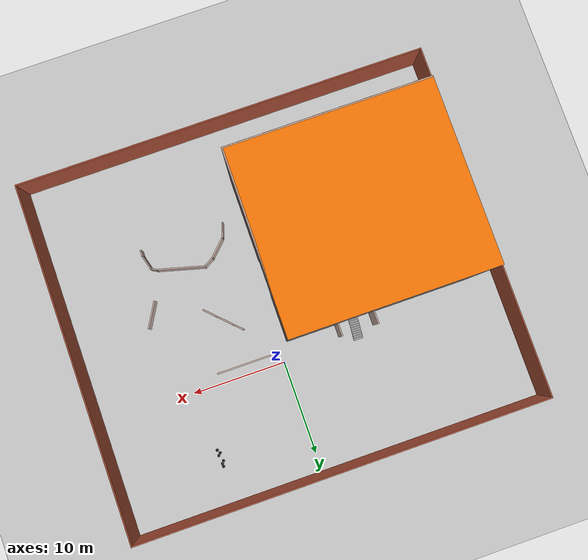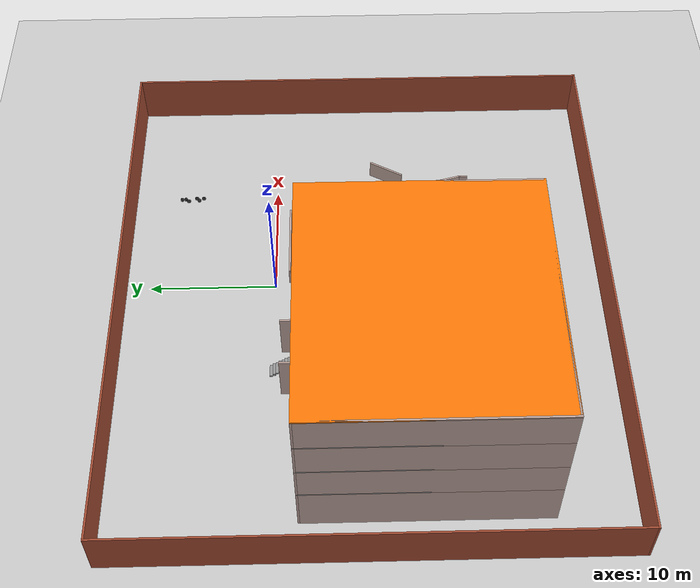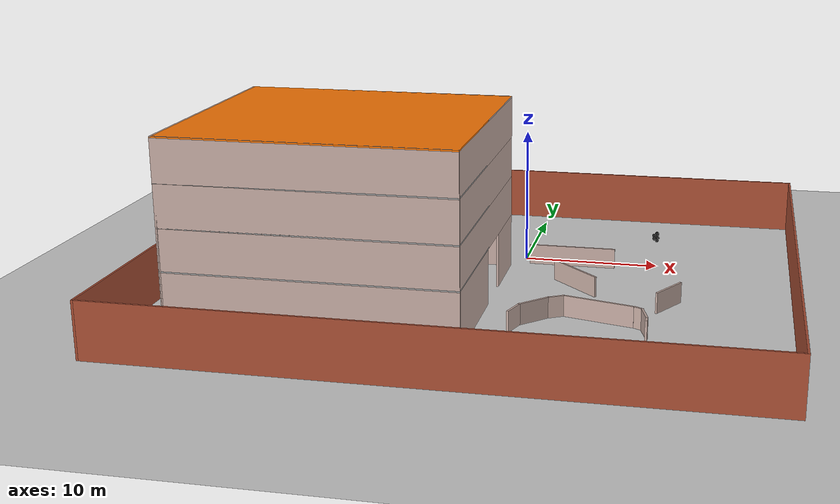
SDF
<sdf version="1.7">
 <world name="default">
  <model name="ground_plane">
   <static>1</static>
   <link name="link">
    <collision name="collision">
     <geometry><plane><normal>0 0 1</normal><size>100 100</size></plane></geometry>
     <surface><friction><ode><mu>100</mu><mu2>50</mu2></ode></friction></surface>
    </collision>
    <visual name="visual">
     <cast_shadows>0</cast_shadows>
     <geometry><plane><normal>0 0 1</normal><size>100 100</size></plane></geometry>
     <material>
      <script><uri>file://media/materials/scripts/gazebo.material</uri><name>Gazebo/Grey</name></script>
     </material>
    </visual>
   </link>
  </model>
  <model name="building2">
   <pose>-11 -10.325 0 0 -0 0</pose>
   <link name="Floor_0">
    <collision name="Floor_0_Collision">
     <geometry><box><size>20.15 18.15 0.1</size></box></geometry>
     <pose>0 0 0.05 0 -0 0</pose>
    </collision>
    <visual name="Floor_0_Visual">
     <pose>0 0 0.05 0 -0 0</pose>
     <geometry><box><size>20.15 18.15 0.1</size></box></geometry>
     <material>
      <script><uri>file://media/materials/scripts/gazebo.material</uri><name>Gazebo/Grey</name></script>
      <ambient>1 1 1 1</ambient>
     </material>
     <meta><layer>1</layer></meta>
    </visual>
    <pose>-0 -0.675 4 0 -0 0</pose>
   </link>
   <link name="Floor_2">
    <collision name="Floor_2_Collision">
     <geometry><box><size>20.15 18.15 0.1</size></box></geometry>
     <pose>0 0 0.05 0 -0 0</pose>
    </collision>
    <visual name="Floor_2_Visual">
     <pose>0 0 0.05 0 -0 0</pose>
     <geometry><box><size>20.15 18.15 0.1</size></box></geometry>
     <material>
      <script><uri>file://media/materials/scripts/gazebo.material</uri><name>Gazebo/Grey</name></script>
      <ambient>1 1 1 1</ambient>
     </material>
     <meta><layer>2</layer></meta>
    </visual>
    <pose>-0 -0.675 7 0 -0 0</pose>
   </link>
   <link name="Floor_3">
    <collision name="Floor_3_Collision">
     <geometry><box><size>20.15 18.15 0.1</size></box></geometry>
     <pose>0 0 0.05 0 -0 0</pose>
    </collision>
    <visual name="Floor_3_Visual">
     <pose>0 0 0.05 0 -0 0</pose>
     <geometry><box><size>20.15 18.15 0.1</size></box></geometry>
     <material>
      <script><uri>file://media/materials/scripts/gazebo.material</uri><name>Gazebo/Grey</name></script>
      <ambient>1 1 1 1</ambient>
     </material>
     <meta><layer>3</layer></meta>
    </visual>
    <pose>-0 -0.675 10 0 -0 0</pose>
   </link>
   <link name="Floor_8">
    <collision name="Floor_8_Collision">
     <geometry><box><size>20.15 18.15 0.1</size></box></geometry>
     <pose>0 0 0.05 0 -0 0</pose>
    </collision>
    <visual name="Floor_8_Visual">
     <pose>0 0 0.05 0 -0 0</pose>
     <geometry><box><size>20.15 18.15 0.1</size></box></geometry>
     <material>
      <script><uri>file://media/materials/scripts/gazebo.material</uri><name>Gazebo/Grey</name></script>
      <ambient>0.996078 0.47451 0.0196078 1</ambient>
     </material>
     <meta><layer>4</layer></meta>
    </visual>
    <pose>-0 -0.675 13 0 -0 0</pose>
   </link>
   <link name="Wall_11">
    <collision name="Wall_11_Collision">
     <geometry><box><size>1.5 0.15 4</size></box></geometry>
     <pose>0 0 2 0 -0 0</pose>
    </collision>
    <visual name="Wall_11_Visual">
     <pose>0 0 2 0 -0 0</pose>
     <geometry><box><size>1.5 0.15 4</size></box></geometry>
     <material>
      <script><uri>file://media/materials/scripts/gazebo.material</uri><name>Gazebo/Grey</name></script>
      <ambient>0.760784 0.662745 0.627451 1</ambient>
     </material>
     <meta><layer>0</layer></meta>
    </visual>
    <pose>0.8 9 0 0 -0 -1.5708</pose>
   </link>
   <link name="Wall_12">
    <collision name="Wall_12_Collision">
     <geometry><box><size>10.95 0.15 4</size></box></geometry>
     <pose>0 0 2 0 -0 0</pose>
    </collision>
    <visual name="Wall_12_Visual">
     <pose>0 0 2 0 -0 0</pose>
     <geometry><box><size>10.95 0.15 4</size></box></geometry>
     <material>
      <script><uri>file://media/materials/scripts/gazebo.material</uri><name>Gazebo/Grey</name></script>
      <ambient>0.760784 0.662745 0.627451 1</ambient>
     </material>
     <meta><layer>0</layer></meta>
    </visual>
    <pose>-4.6 8.325 0 0 -0 3.14159</pose>
   </link>
   <link name="Wall_14">
    <collision name="Wall_14_Collision">
     <geometry><box><size>18.15 0.15 4</size></box></geometry>
     <pose>0 0 2 0 -0 0</pose>
    </collision>
    <visual name="Wall_14_Visual">
     <pose>0 0 2 0 -0 0</pose>
     <geometry><box><size>18.15 0.15 4</size></box></geometry>
     <material>
      <script><uri>file://media/materials/scripts/gazebo.material</uri><name>Gazebo/Grey</name></script>
      <ambient>0.760784 0.662745 0.627451 1</ambient>
     </material>
     <meta><layer>0</layer></meta>
    </visual>
    <pose>-10 -0.675 0 0 -0 -1.5708</pose>
   </link>
   <link name="Wall_16">
    <collision name="Wall_16_Collision">
     <geometry><box><size>20.15 0.15 4</size></box></geometry>
     <pose>0 0 2 0 -0 0</pose>
    </collision>
    <visual name="Wall_16_Visual">
     <pose>0 0 2 0 -0 0</pose>
     <geometry><box><size>20.15 0.15 4</size></box></geometry>
     <material>
      <script><uri>file://media/materials/scripts/gazebo.material</uri><name>Gazebo/Grey</name></script>
      <ambient>0.760784 0.662745 0.627451 1</ambient>
     </material>
     <meta><layer>0</layer></meta>
    </visual>
    <pose>-0 -9.675 0 0 -0 0</pose>
   </link>
   <link name="Wall_24">
    <collision name="Wall_24_Collision">
     <geometry><box><size>18.15 0.15 3</size></box></geometry>
     <pose>0 0 1.5 0 -0 0</pose>
    </collision>
    <visual name="Wall_24_Visual">
     <pose>0 0 1.5 0 -0 0</pose>
     <geometry><box><size>18.15 0.15 3</size></box></geometry>
     <material>
      <script><uri>file://media/materials/scripts/gazebo.material</uri><name>Gazebo/Grey</name></script>
      <ambient>0.760784 0.662745 0.627451 1</ambient>
     </material>
     <meta><layer>1</layer></meta>
    </visual>
    <pose>-10 -0.675 4 0 -0 -1.5708</pose>
   </link>
   <link name="Wall_25">
    <collision name="Wall_25_Collision">
     <geometry><box><size>20.15 0.15 3</size></box></geometry>
     <pose>0 0 1.5 0 -0 0</pose>
    </collision>
    <visual name="Wall_25_Visual">
     <pose>0 0 1.5 0 -0 0</pose>
     <geometry><box><size>20.15 0.15 3</size></box></geometry>
     <material>
      <script><uri>file://media/materials/scripts/gazebo.material</uri><name>Gazebo/Grey</name></script>
      <ambient>0.760784 0.662745 0.627451 1</ambient>
     </material>
     <meta><layer>1</layer></meta>
    </visual>
    <pose>-0 -9.675 4 0 -0 0</pose>
   </link>
   <link name="Wall_31">
    <collision name="Wall_31_Collision">
     <geometry><box><size>20.15 0.15 3</size></box></geometry>
     <pose>0 0 1.5 0 -0 0</pose>
    </collision>
    <visual name="Wall_31_Visual">
     <pose>0 0 1.5 0 -0 0</pose>
     <geometry><box><size>20.15 0.15 3</size></box></geometry>
     <material>
      <script><uri>file://media/materials/scripts/gazebo.material</uri><name>Gazebo/Grey</name></script>
      <ambient>0.760784 0.662745 0.627451 1</ambient>
     </material>
     <meta><layer>1</layer></meta>
    </visual>
    <pose>-0 8.325 4 0 -0 0</pose>
   </link>
   <link name="Wall_33">
    <collision name="Wall_33_Collision">
     <geometry><box><size>18 0.15 3</size></box></geometry>
     <pose>0 0 1.5 0 -0 0</pose>
    </collision>
    <visual name="Wall_33_Visual">
     <pose>0 0 1.5 0 -0 0</pose>
     <geometry><box><size>18 0.15 3</size></box></geometry>
     <material>
      <script><uri>file://media/materials/scripts/gazebo.material</uri><name>Gazebo/Grey</name></script>
      <ambient>0.760784 0.662745 0.627451 1</ambient>
     </material>
     <meta><layer>1</layer></meta>
    </visual>
    <pose>10 -0.6 4 0 -0 -1.5708</pose>
   </link>
   <link name="Wall_4">
    <collision name="Wall_4_Collision">
     <geometry><box><size>5.15 0.15 4</size></box></geometry>
     <pose>0 0 2 0 -0 0</pose>
    </collision>
    <visual name="Wall_4_Visual">
     <pose>0 0 2 0 -0 0</pose>
     <geometry><box><size>5.15 0.15 4</size></box></geometry>
     <material>
      <script><uri>file://media/materials/scripts/gazebo.material</uri><name>Gazebo/Grey</name></script>
      <ambient>0.760784 0.662745 0.627451 1</ambient>
     </material>
     <meta><layer>0</layer></meta>
    </visual>
    <pose>10 5.825 0 0 -0 -1.5708</pose>
   </link>
   <link name="Wall_42">
    <collision name="Wall_42_Collision">
     <geometry><box><size>18.15 0.15 3</size></box></geometry>
     <pose>0 0 1.5 0 -0 0</pose>
    </collision>
    <visual name="Wall_42_Visual">
     <pose>0 0 1.5 0 -0 0</pose>
     <geometry><box><size>18.15 0.15 3</size></box></geometry>
     <material>
      <script><uri>file://media/materials/scripts/gazebo.material</uri><name>Gazebo/Grey</name></script>
      <ambient>0.760784 0.662745 0.627451 1</ambient>
     </material>
     <meta><layer>2</layer></meta>
    </visual>
    <pose>-10 -0.675 7 0 -0 -1.5708</pose>
   </link>
   <link name="Wall_43">
    <collision name="Wall_43_Collision">
     <geometry><box><size>20.15 0.15 3</size></box></geometry>
     <pose>0 0 1.5 0 -0 0</pose>
    </collision>
    <visual name="Wall_43_Visual">
     <pose>0 0 1.5 0 -0 0</pose>
     <geometry><box><size>20.15 0.15 3</size></box></geometry>
     <material>
      <script><uri>file://media/materials/scripts/gazebo.material</uri><name>Gazebo/Grey</name></script>
      <ambient>0.760784 0.662745 0.627451 1</ambient>
     </material>
     <meta><layer>2</layer></meta>
    </visual>
    <pose>-0 -9.675 7 0 -0 0</pose>
   </link>
   <link name="Wall_44">
    <collision name="Wall_44_Collision">
     <geometry><box><size>20.15 0.15 3</size></box></geometry>
     <pose>0 0 1.5 0 -0 0</pose>
    </collision>
    <visual name="Wall_44_Visual">
     <pose>0 0 1.5 0 -0 0</pose>
     <geometry><box><size>20.15 0.15 3</size></box></geometry>
     <material>
      <script><uri>file://media/materials/scripts/gazebo.material</uri><name>Gazebo/Grey</name></script>
      <ambient>0.760784 0.662745 0.627451 1</ambient>
     </material>
     <meta><layer>2</layer></meta>
    </visual>
    <pose>-0 8.325 7 0 -0 0</pose>
   </link>
   <link name="Wall_45">
    <collision name="Wall_45_Collision">
     <geometry><box><size>18 0.15 3</size></box></geometry>
     <pose>0 0 1.5 0 -0 0</pose>
    </collision>
    <visual name="Wall_45_Visual">
     <pose>0 0 1.5 0 -0 0</pose>
     <geometry><box><size>18 0.15 3</size></box></geometry>
     <material>
      <script><uri>file://media/materials/scripts/gazebo.material</uri><name>Gazebo/Grey</name></script>
      <ambient>0.760784 0.662745 0.627451 1</ambient>
     </material>
     <meta><layer>2</layer></meta>
    </visual>
    <pose>10 -0.6 7 0 -0 -1.5708</pose>
   </link>
   <link name="Wall_46">
    <collision name="Wall_46_Collision">
     <geometry><box><size>18.15 0.15 3</size></box></geometry>
     <pose>0 0 1.5 0 -0 0</pose>
    </collision>
    <visual name="Wall_46_Visual">
     <pose>0 0 1.5 0 -0 0</pose>
     <geometry><box><size>18.15 0.15 3</size></box></geometry>
     <material>
      <script><uri>file://media/materials/scripts/gazebo.material</uri><name>Gazebo/Grey</name></script>
      <ambient>0.760784 0.662745 0.627451 1</ambient>
     </material>
     <meta><layer>3</layer></meta>
    </visual>
    <pose>-10 -0.675 10 0 -0 -1.5708</pose>
   </link>
   <link name="Wall_47">
    <collision name="Wall_47_Collision">
     <geometry><box><size>20.15 0.15 3</size></box></geometry>
     <pose>0 0 1.5 0 -0 0</pose>
    </collision>
    <visual name="Wall_47_Visual">
     <pose>0 0 1.5 0 -0 0</pose>
     <geometry><box><size>20.15 0.15 3</size></box></geometry>
     <material>
      <script><uri>file://media/materials/scripts/gazebo.material</uri><name>Gazebo/Grey</name></script>
      <ambient>0.760784 0.662745 0.627451 1</ambient>
     </material>
     <meta><layer>3</layer></meta>
    </visual>
    <pose>-0 -9.675 10 0 -0 0</pose>
   </link>
   <link name="Wall_48">
    <collision name="Wall_48_Collision">
     <geometry><box><size>20.15 0.15 3</size></box></geometry>
     <pose>0 0 1.5 0 -0 0</pose>
    </collision>
    <visual name="Wall_48_Visual">
     <pose>0 0 1.5 0 -0 0</pose>
     <geometry><box><size>20.15 0.15 3</size></box></geometry>
     <material>
      <script><uri>file://media/materials/scripts/gazebo.material</uri><name>Gazebo/Grey</name></script>
      <ambient>0.760784 0.662745 0.627451 1</ambient>
     </material>
     <meta><layer>3</layer></meta>
    </visual>
    <pose>-0 8.325 10 0 -0 0</pose>
   </link>
   <link name="Wall_49">
    <collision name="Wall_49_Collision">
     <geometry><box><size>18 0.15 3</size></box></geometry>
     <pose>0 0 1.5 0 -0 0</pose>
    </collision>
    <visual name="Wall_49_Visual">
     <pose>0 0 1.5 0 -0 0</pose>
     <geometry><box><size>18 0.15 3</size></box></geometry>
     <material>
      <script><uri>file://media/materials/scripts/gazebo.material</uri><name>Gazebo/Grey</name></script>
      <ambient>0.760784 0.662745 0.627451 1</ambient>
     </material>
     <meta><layer>3</layer></meta>
    </visual>
    <pose>10 -0.6 10 0 -0 -1.5708</pose>
   </link>
   <link name="Wall_6">
    <collision name="Wall_6_Collision">
     <geometry><box><size>9.15 0.15 4</size></box></geometry>
     <pose>0 0 2 0 -0 0</pose>
    </collision>
    <visual name="Wall_6_Visual">
     <pose>0 0 2 0 -0 0</pose>
     <geometry><box><size>9.15 0.15 4</size></box></geometry>
     <material>
      <script><uri>file://media/materials/scripts/gazebo.material</uri><name>Gazebo/Grey</name></script>
      <ambient>0.760784 0.662745 0.627451 1</ambient>
     </material>
     <meta><layer>0</layer></meta>
    </visual>
    <pose>10 -5.175 0 0 -0 -1.5708</pose>
   </link>
   <link name="Wall_76">
    <collision name="Wall_76_Collision">
     <geometry><box><size>18.15 0.15 0.1</size></box></geometry>
     <pose>0 0 0.05 0 -0 0</pose>
    </collision>
    <visual name="Wall_76_Visual">
     <pose>0 0 0.05 0 -0 0</pose>
     <geometry><box><size>18.15 0.15 0.1</size></box></geometry>
     <material>
      <script><uri>file://media/materials/scripts/gazebo.material</uri><name>Gazebo/Grey</name></script>
      <ambient>0.760784 0.662745 0.627451 1</ambient>
     </material>
     <meta><layer>4</layer></meta>
    </visual>
    <pose>-10 -0.675 13 0 -0 -1.5708</pose>
   </link>
   <link name="Wall_77">
    <collision name="Wall_77_Collision">
     <geometry><box><size>20.15 0.15 0.1</size></box></geometry>
     <pose>0 0 0.05 0 -0 0</pose>
    </collision>
    <visual name="Wall_77_Visual">
     <pose>0 0 0.05 0 -0 0</pose>
     <geometry><box><size>20.15 0.15 0.1</size></box></geometry>
     <material>
      <script><uri>file://media/materials/scripts/gazebo.material</uri><name>Gazebo/Grey</name></script>
      <ambient>0.760784 0.662745 0.627451 1</ambient>
     </material>
     <meta><layer>4</layer></meta>
    </visual>
    <pose>-0 -9.675 13 0 -0 0</pose>
   </link>
   <link name="Wall_78">
    <collision name="Wall_78_Collision">
     <geometry><box><size>20.15 0.15 0.1</size></box></geometry>
     <pose>0 0 0.05 0 -0 0</pose>
    </collision>
    <visual name="Wall_78_Visual">
     <pose>0 0 0.05 0 -0 0</pose>
     <geometry><box><size>20.15 0.15 0.1</size></box></geometry>
     <material>
      <script><uri>file://media/materials/scripts/gazebo.material</uri><name>Gazebo/Grey</name></script>
      <ambient>0.760784 0.662745 0.627451 1</ambient>
     </material>
     <meta><layer>4</layer></meta>
    </visual>
    <pose>-0 8.325 13 0 -0 0</pose>
   </link>
   <link name="Wall_79">
    <collision name="Wall_79_Collision">
     <geometry><box><size>18 0.15 0.1</size></box></geometry>
     <pose>0 0 0.05 0 -0 0</pose>
    </collision>
    <visual name="Wall_79_Visual">
     <pose>0 0 0.05 0 -0 0</pose>
     <geometry><box><size>18 0.15 0.1</size></box></geometry>
     <material>
      <script><uri>file://media/materials/scripts/gazebo.material</uri><name>Gazebo/Grey</name></script>
      <ambient>0.760784 0.662745 0.627451 1</ambient>
     </material>
     <meta><layer>4</layer></meta>
    </visual>
    <pose>10 -0.6 13 0 -0 -1.5708</pose>
   </link>
   <link name="Wall_8">
    <collision name="Wall_8_Collision">
     <geometry><box><size>5.5 0.15 4</size></box></geometry>
     <pose>0 0 2 0 -0 0</pose>
    </collision>
    <visual name="Wall_8_Visual">
     <pose>0 0 2 0 -0 0</pose>
     <geometry><box><size>5.5 0.15 4</size></box></geometry>
     <material>
      <script><uri>file://media/materials/scripts/gazebo.material</uri><name>Gazebo/Grey</name></script>
      <ambient>0.760784 0.662745 0.627451 1</ambient>
     </material>
     <meta><layer>0</layer></meta>
    </visual>
    <pose>7.325 8.325 0 0 -0 3.14159</pose>
   </link>
   <link name="Wall_9">
    <collision name="Wall_9_Collision">
     <geometry><box><size>1.5 0.15 4</size></box></geometry>
     <pose>0 0 2 0 -0 0</pose>
    </collision>
    <visual name="Wall_9_Visual">
     <pose>0 0 2 0 -0 0</pose>
     <geometry><box><size>1.5 0.15 4</size></box></geometry>
     <material>
      <script><uri>file://media/materials/scripts/gazebo.material</uri><name>Gazebo/Grey</name></script>
      <ambient>0.760784 0.662745 0.627451 1</ambient>
     </material>
     <meta><layer>0</layer></meta>
    </visual>
    <pose>4.65 9 0 0 -0 1.5708</pose>
   </link>
   <static>1</static>
  </model>
  <model name="wall11">
   <pose>-2 -7 0 0 -0 0</pose>
   <link name="Wall_0">
    <collision name="Wall_0_Collision">
     <geometry><box><size>44.15 0.15 4</size></box></geometry>
     <pose>0 0 2 0 -0 0</pose>
    </collision>
    <visual name="Wall_0_Visual">
     <pose>0 0 2 0 -0 0</pose>
     <geometry><box><size>44.15 0.15 4</size></box></geometry>
     <material>
      <script><uri>file://media/materials/scripts/gazebo.material</uri><name>Gazebo/Bricks</name></script>
      <ambient>1 1 1 1</ambient>
     </material>
     <meta><layer>0</layer></meta>
    </visual>
    <pose>0 19 0 0 -0 0</pose>
   </link>
   <link name="Wall_2">
    <collision name="Wall_2_Collision">
     <geometry><box><size>38.15 0.15 4</size></box></geometry>
     <pose>0 0 2 0 -0 0</pose>
    </collision>
    <visual name="Wall_2_Visual">
     <pose>0 0 2 0 -0 0</pose>
     <geometry><box><size>38.15 0.15 4</size></box></geometry>
     <material>
      <script><uri>file://media/materials/scripts/gazebo.material</uri><name>Gazebo/Bricks</name></script>
      <ambient>1 1 1 1</ambient>
     </material>
     <meta><layer>0</layer></meta>
    </visual>
    <pose>22 0 0 0 -0 -1.5708</pose>
   </link>
   <link name="Wall_4">
    <collision name="Wall_4_Collision">
     <geometry><box><size>44.15 0.15 4</size></box></geometry>
     <pose>0 0 2 0 -0 0</pose>
    </collision>
    <visual name="Wall_4_Visual">
     <pose>0 0 2 0 -0 0</pose>
     <geometry><box><size>44.15 0.15 4</size></box></geometry>
     <material>
      <script><uri>file://media/materials/scripts/gazebo.material</uri><name>Gazebo/Bricks</name></script>
      <ambient>1 1 1 1</ambient>
     </material>
     <meta><layer>0</layer></meta>
    </visual>
    <pose>0 -19 0 0 -0 3.14159</pose>
   </link>
   <link name="Wall_6">
    <collision name="Wall_6_Collision">
     <geometry><box><size>38.15 0.15 4</size></box></geometry>
     <pose>0 0 2 0 -0 0</pose>
    </collision>
    <visual name="Wall_6_Visual">
     <pose>0 0 2 0 -0 0</pose>
     <geometry><box><size>38.15 0.15 4</size></box></geometry>
     <material>
      <script><uri>file://media/materials/scripts/gazebo.material</uri><name>Gazebo/Bricks</name></script>
      <ambient>1 1 1 1</ambient>
     </material>
     <meta><layer>0</layer></meta>
    </visual>
    <pose>-22 0 0 0 -0 1.5708</pose>
   </link>
   <static>1</static>
  </model>
  <model name="wall12">
   <pose>6.34105 -8.55443 0 0 -0 0</pose>
   <link name="Wall_0">
    <collision name="Wall_0_Collision">
     <geometry><box><size>1.73114 0.15 1.5</size></box></geometry>
     <pose>0 0 0.75 0 -0 0</pose>
    </collision>
    <visual name="Wall_0_Visual">
     <pose>0 0 0.75 0 -0 0</pose>
     <geometry><box><size>1.73114 0.15 1.5</size></box></geometry>
     <material>
      <script><uri>file://media/materials/scripts/gazebo.material</uri><name>Gazebo/Grey</name></script>
      <ambient>0.760784 0.662745 0.627451 1</ambient>
     </material>
     <meta><layer>0</layer></meta>
    </visual>
    <pose>-4.71274 -6.64107 0 0 -0 1.24905</pose>
   </link>
   <link name="Wall_13">
    <collision name="Wall_13_Collision">
     <geometry><box><size>6.5 0.15 1.5</size></box></geometry>
     <pose>0 0 0.75 0 -0 0</pose>
    </collision>
    <visual name="Wall_13_Visual">
     <pose>0 0 0.75 0 -0 0</pose>
     <geometry><box><size>6.5 0.15 1.5</size></box></geometry>
     <material>
      <script><uri>file://media/materials/scripts/gazebo.material</uri><name>Gazebo/Grey</name></script>
      <ambient>0.760784 0.662745 0.627451 1</ambient>
     </material>
     <meta><layer>0</layer></meta>
    </visual>
    <pose>-2.67774 7.41093 0 0 -0 0</pose>
   </link>
   <link name="Wall_15">
    <collision name="Wall_15_Collision">
     <geometry><box><size>4.75 0.15 1.5</size></box></geometry>
     <pose>0 0 0.75 0 -0 0</pose>
    </collision>
    <visual name="Wall_15_Visual">
     <pose>0 0 0.75 0 -0 0</pose>
     <geometry><box><size>4.75 0.15 1.5</size></box></geometry>
     <material>
      <script><uri>file://media/materials/scripts/gazebo.material</uri><name>Gazebo/Grey</name></script>
      <ambient>0.760784 0.662745 0.627451 1</ambient>
     </material>
     <meta><layer>0</layer></meta>
    </visual>
    <pose>-1.78524 2.28593 0 0 -0 -0.785244</pose>
   </link>
   <link name="Wall_2">
    <collision name="Wall_2_Collision">
     <geometry><box><size>2.5 0.15 1.5</size></box></geometry>
     <pose>0 0 0.75 0 -0 0</pose>
    </collision>
    <visual name="Wall_2_Visual">
     <pose>0 0 0.75 0 -0 0</pose>
     <geometry><box><size>2.5 0.15 1.5</size></box></geometry>
     <material>
      <script><uri>file://media/materials/scripts/gazebo.material</uri><name>Gazebo/Grey</name></script>
      <ambient>0.760784 0.662745 0.627451 1</ambient>
     </material>
     <meta><layer>0</layer></meta>
    </visual>
    <pose>-3.63175 -5.06007 0 0 -0 0.785398</pose>
   </link>
   <link name="Wall_3">
    <collision name="Wall_3_Collision">
     <geometry><box><size>1.25 0.15 1.5</size></box></geometry>
     <pose>0 0 0.75 0 -0 0</pose>
    </collision>
    <visual name="Wall_3_Visual">
     <pose>0 0 0.75 0 -0 0</pose>
     <geometry><box><size>1.25 0.15 1.5</size></box></geometry>
     <material>
      <script><uri>file://media/materials/scripts/gazebo.material</uri><name>Gazebo/Grey</name></script>
      <ambient>0.760784 0.662745 0.627451 1</ambient>
     </material>
     <meta><layer>0</layer></meta>
    </visual>
    <pose>-2.32475 -3.95407 0 0 -0 0.523884</pose>
   </link>
   <link name="Wall_5">
    <collision name="Wall_5_Collision">
     <geometry><box><size>0.75 0.15 1.5</size></box></geometry>
     <pose>0 0 0.75 0 -0 0</pose>
    </collision>
    <visual name="Wall_5_Visual">
     <pose>0 0 0.75 0 -0 0</pose>
     <geometry><box><size>0.75 0.15 1.5</size></box></geometry>
     <material>
      <script><uri>file://media/materials/scripts/gazebo.material</uri><name>Gazebo/Grey</name></script>
      <ambient>0.760784 0.662745 0.627451 1</ambient>
     </material>
     <meta><layer>0</layer></meta>
    </visual>
    <pose>4.07425 -7.09807 0 0 -0 1.5708</pose>
   </link>
   <link name="Wall_6">
    <collision name="Wall_6_Collision">
     <geometry><box><size>1.75 0.15 1.5</size></box></geometry>
     <pose>0 0 0.75 0 -0 0</pose>
    </collision>
    <visual name="Wall_6_Visual">
     <pose>0 0 0.75 0 -0 0</pose>
     <geometry><box><size>1.75 0.15 1.5</size></box></geometry>
     <material>
      <script><uri>file://media/materials/scripts/gazebo.material</uri><name>Gazebo/Grey</name></script>
      <ambient>0.760784 0.662745 0.627451 1</ambient>
     </material>
     <meta><layer>0</layer></meta>
    </visual>
    <pose>3.86726 -6.02557 0 0 -0 1.83261</pose>
   </link>
   <link name="Wall_7">
    <collision name="Wall_7_Collision">
     <geometry><box><size>0.75 0.15 1.5</size></box></geometry>
     <pose>0 0 0.75 0 -0 0</pose>
    </collision>
    <visual name="Wall_7_Visual">
     <pose>0 0 0.75 0 -0 0</pose>
     <geometry><box><size>0.75 0.15 1.5</size></box></geometry>
     <material>
      <script><uri>file://media/materials/scripts/gazebo.material</uri><name>Gazebo/Grey</name></script>
      <ambient>0.760784 0.662745 0.627451 1</ambient>
     </material>
     <meta><layer>0</layer></meta>
    </visual>
    <pose>3.40026 -5.10307 0 0 -0 2.61831</pose>
   </link>
   <link name="Wall_9">
    <collision name="Wall_9_Collision">
     <geometry><box><size>3 0.15 1.5</size></box></geometry>
     <pose>0 0 0.75 0 -0 0</pose>
    </collision>
    <visual name="Wall_9_Visual">
     <pose>0 0 0.75 0 -0 0</pose>
     <geometry><box><size>3 0.15 1.5</size></box></geometry>
     <material>
      <script><uri>file://media/materials/scripts/gazebo.material</uri><name>Gazebo/Grey</name></script>
      <ambient>0.760784 0.662745 0.627451 1</ambient>
     </material>
     <meta><layer>0</layer></meta>
    </visual>
    <pose>5.11275 -0.631066 0 0 -0 1.04717</pose>
   </link>
   <static>1</static>
  </model>
  <model name="wall1">
   <pose>6.97273 -12.8415 0 0 0 -0.014727</pose>
   <link name="Wall_0">
    <collision name="Wall_0_Collision">
     <geometry><box><size>5.09773 0.15 1.5</size></box></geometry>
     <pose>0 0 0.75 0 -0 0</pose>
    </collision>
    <visual name="Wall_0_Visual">
     <pose>0 0 0.75 0 -0 0</pose>
     <geometry><box><size>5.09773 0.15 1.5</size></box></geometry>
     <material>
      <script><uri>file://media/materials/scripts/gazebo.material</uri><name>Gazebo/Grey</name></script>
      <ambient>0.760784 0.662745 0.627451 1</ambient>
     </material>
     <meta><layer>0</layer></meta>
    </visual>
    <pose>0 0 0 0 -0 -0.244979</pose>
   </link>
   <static>1</static>
  </model>
  <model name="haoduomiantiaa_38">
   <link name="link_0">
    <inertial>
     <mass>0.2</mass>
     <inertia>
      <ixx>0.166667</ixx>
      <ixy>0</ixy>
      <ixz>0</ixz>
      <iyy>0.166667</iyy>
      <iyz>0</iyz>
      <izz>0.166667</izz>
     </inertia>
    </inertial>
    <visual name="visual">
     <geometry>
      <mesh>
       <uri>/home/lihaoyang/catkin_ws/src/pudong_gazebo/world/stl/haoduomianti.stl</uri>
       <scale>1 1 1</scale>
      </mesh>
     </geometry>
     <material>
      <lighting>1</lighting>
      <script><uri>file://media/materials/scripts/gazebo.material</uri><name>Gazebo/Black</name></script>
      <shader type="pixel"><normal_map>__default__</normal_map></shader>
      <ambient>0.3 0.3 0.3 1</ambient>
      <diffuse>0.7 0.7 0.7 1</diffuse>
      <specular>0.01 0.01 0.01 1</specular>
      <emissive>0 0 0 1</emissive>
     </material>
    </visual>
    <collision name="collision">
     <geometry>
      <mesh>
       <uri>/home/lihaoyang/catkin_ws/src/pudong_gazebo/world/stl/haoduomianti.stl</uri>
       <scale>1 1 1</scale>
      </mesh>
     </geometry>
     <surface>
      <friction>
       <ode><mu>1</mu><mu2>1</mu2><fdir1>0 0 0</fdir1><slip1>0</slip1><slip2>0</slip2></ode>
       <torsional>
        <coefficient>1</coefficient>
        <patch_radius>0</patch_radius>
        <surface_radius>0</surface_radius>
        <use_patch_radius>1</use_patch_radius>
        <ode><slip>0</slip></ode>
       </torsional>
      </friction>
      <bounce><restitution_coefficient>0</restitution_coefficient><threshold>1e+06</threshold></bounce>
      <contact>
       <collide_without_contact>0</collide_without_contact>
       <collide_without_contact_bitmask>1</collide_without_contact_bitmask>
       <collide_bitmask>1</collide_bitmask>
       <ode>
        <soft_cfm>0</soft_cfm>
        <soft_erp>0.2</soft_erp>
        <kp>1e+13</kp>
        <kd>1</kd>
        <max_vel>0.01</max_vel>
        <min_depth>0</min_depth>
       </ode>
       <bullet>
        <split_impulse>1</split_impulse>
        <split_impulse_penetration_threshold>-0.01</split_impulse_penetration_threshold>
        <soft_cfm>0</soft_cfm>
        <soft_erp>0.2</soft_erp>
        <kp>1e+13</kp>
        <kd>1</kd>
       </bullet>
      </contact>
     </surface>
    </collision>
   </link>
   <static>0</static>
   <pose>9.53542 7.82195 -0.11548 0.785404 -0.615481 2.06556</pose>
  </model>
  <model name="haoduomiantiaa_60">
   <link name="link_0">
    <inertial>
     <mass>0.2</mass>
     <inertia>
      <ixx>0.166667</ixx>
      <ixy>0</ixy>
      <ixz>0</ixz>
      <iyy>0.166667</iyy>
      <iyz>0</iyz>
      <izz>0.166667</izz>
     </inertia>
    </inertial>
    <visual name="visual">
     <geometry>
      <mesh>
       <uri>/home/lihaoyang/catkin_ws/src/pudong_gazebo/world/stl/haoduomianti.stl</uri>
       <scale>1 1 1</scale>
      </mesh>
     </geometry>
     <material>
      <lighting>1</lighting>
      <script><uri>file://media/materials/scripts/gazebo.material</uri><name>Gazebo/Black</name></script>
      <shader type="pixel"><normal_map>__default__</normal_map></shader>
      <ambient>0.3 0.3 0.3 1</ambient>
      <diffuse>0.7 0.7 0.7 1</diffuse>
      <specular>0.01 0.01 0.01 1</specular>
      <emissive>0 0 0 1</emissive>
     </material>
    </visual>
    <collision name="collision">
     <geometry>
      <mesh>
       <uri>/home/lihaoyang/catkin_ws/src/pudong_gazebo/world/stl/haoduomianti.stl</uri>
       <scale>1 1 1</scale>
      </mesh>
     </geometry>
     <surface>
      <friction>
       <ode><mu>1</mu><mu2>1</mu2><fdir1>0 0 0</fdir1><slip1>0</slip1><slip2>0</slip2></ode>
       <torsional>
        <coefficient>1</coefficient>
        <patch_radius>0</patch_radius>
        <surface_radius>0</surface_radius>
        <use_patch_radius>1</use_patch_radius>
        <ode><slip>0</slip></ode>
       </torsional>
      </friction>
      <bounce><restitution_coefficient>0</restitution_coefficient><threshold>1e+06</threshold></bounce>
      <contact>
       <collide_without_contact>0</collide_without_contact>
       <collide_without_contact_bitmask>1</collide_without_contact_bitmask>
       <collide_bitmask>1</collide_bitmask>
       <ode>
        <soft_cfm>0</soft_cfm>
        <soft_erp>0.2</soft_erp>
        <kp>1e+13</kp>
        <kd>1</kd>
        <max_vel>0.01</max_vel>
        <min_depth>0</min_depth>
       </ode>
       <bullet>
        <split_impulse>1</split_impulse>
        <split_impulse_penetration_threshold>-0.01</split_impulse_penetration_threshold>
        <soft_cfm>0</soft_cfm>
        <soft_erp>0.2</soft_erp>
        <kp>1e+13</kp>
        <kd>1</kd>
       </bullet>
      </contact>
     </surface>
    </collision>
   </link>
   <static>0</static>
   <pose>9.62496 6.89441 -0.115489 0.7854 -0.61548 2.87888</pose>
  </model>
  <model name="haoduomiantiaa_78">
   <link name="link_0">
    <inertial>
     <mass>0.2</mass>
     <inertia>
      <ixx>0.166667</ixx>
      <ixy>0</ixy>
      <ixz>0</ixz>
      <iyy>0.166667</iyy>
      <iyz>0</iyz>
      <izz>0.166667</izz>
     </inertia>
    </inertial>
    <visual name="visual">
     <geometry>
      <mesh>
       <uri>/home/lihaoyang/catkin_ws/src/pudong_gazebo/world/stl/haoduomianti.stl</uri>
       <scale>1 1 1</scale>
      </mesh>
     </geometry>
     <material>
      <lighting>1</lighting>
      <script><uri>file://media/materials/scripts/gazebo.material</uri><name>Gazebo/Black</name></script>
      <shader type="pixel"><normal_map>__default__</normal_map></shader>
      <ambient>0.3 0.3 0.3 1</ambient>
      <diffuse>0.7 0.7 0.7 1</diffuse>
      <specular>0.01 0.01 0.01 1</specular>
      <emissive>0 0 0 1</emissive>
     </material>
    </visual>
    <collision name="collision">
     <geometry>
      <mesh>
       <uri>/home/lihaoyang/catkin_ws/src/pudong_gazebo/world/stl/haoduomianti.stl</uri>
       <scale>1 1 1</scale>
      </mesh>
     </geometry>
     <surface>
      <friction>
       <ode><mu>1</mu><mu2>1</mu2><fdir1>0 0 0</fdir1><slip1>0</slip1><slip2>0</slip2></ode>
       <torsional>
        <coefficient>1</coefficient>
        <patch_radius>0</patch_radius>
        <surface_radius>0</surface_radius>
        <use_patch_radius>1</use_patch_radius>
        <ode><slip>0</slip></ode>
       </torsional>
      </friction>
      <bounce><restitution_coefficient>0</restitution_coefficient><threshold>1e+06</threshold></bounce>
      <contact>
       <collide_without_contact>0</collide_without_contact>
       <collide_without_contact_bitmask>1</collide_without_contact_bitmask>
       <collide_bitmask>1</collide_bitmask>
       <ode>
        <soft_cfm>0</soft_cfm>
        <soft_erp>0.2</soft_erp>
        <kp>1e+13</kp>
        <kd>1</kd>
        <max_vel>0.01</max_vel>
        <min_depth>0</min_depth>
       </ode>
       <bullet>
        <split_impulse>1</split_impulse>
        <split_impulse_penetration_threshold>-0.01</split_impulse_penetration_threshold>
        <soft_cfm>0</soft_cfm>
        <soft_erp>0.2</soft_erp>
        <kp>1e+13</kp>
        <kd>1</kd>
       </bullet>
      </contact>
     </surface>
    </collision>
   </link>
   <static>0</static>
   <pose>9.61003 6.31602 -0.115464 0.785279 -0.615552 1.0628</pose>
  </model>
  <model name="haoduomiantiaa_88">
   <link name="link_0">
    <inertial>
     <mass>0.2</mass>
     <inertia>
      <ixx>0.166667</ixx>
      <ixy>0</ixy>
      <ixz>0</ixz>
      <iyy>0.166667</iyy>
      <iyz>0</iyz>
      <izz>0.166667</izz>
     </inertia>
    </inertial>
    <visual name="visual">
     <geometry>
      <mesh>
       <uri>/home/lihaoyang/catkin_ws/src/pudong_gazebo/world/stl/haoduomianti.stl</uri>
       <scale>1 1 1</scale>
      </mesh>
     </geometry>
     <material>
      <lighting>1</lighting>
      <script><uri>file://media/materials/scripts/gazebo.material</uri><name>Gazebo/Black</name></script>
      <shader type="pixel"><normal_map>__default__</normal_map></shader>
      <ambient>0.3 0.3 0.3 1</ambient>
      <diffuse>0.7 0.7 0.7 1</diffuse>
      <specular>0.01 0.01 0.01 1</specular>
      <emissive>0 0 0 1</emissive>
     </material>
    </visual>
    <collision name="collision">
     <geometry>
      <mesh>
       <uri>/home/lihaoyang/catkin_ws/src/pudong_gazebo/world/stl/haoduomianti.stl</uri>
       <scale>1 1 1</scale>
      </mesh>
     </geometry>
     <surface>
      <friction>
       <ode><mu>1</mu><mu2>1</mu2><fdir1>0 0 0</fdir1><slip1>0</slip1><slip2>0</slip2></ode>
       <torsional>
        <coefficient>1</coefficient>
        <patch_radius>0</patch_radius>
        <surface_radius>0</surface_radius>
        <use_patch_radius>1</use_patch_radius>
        <ode><slip>0</slip></ode>
       </torsional>
      </friction>
      <bounce><restitution_coefficient>0</restitution_coefficient><threshold>1e+06</threshold></bounce>
      <contact>
       <collide_without_contact>0</collide_without_contact>
       <collide_without_contact_bitmask>1</collide_without_contact_bitmask>
       <collide_bitmask>1</collide_bitmask>
       <ode>
        <soft_cfm>0</soft_cfm>
        <soft_erp>0.2</soft_erp>
        <kp>1e+13</kp>
        <kd>1</kd>
        <max_vel>0.01</max_vel>
        <min_depth>0</min_depth>
       </ode>
       <bullet>
        <split_impulse>1</split_impulse>
        <split_impulse_penetration_threshold>-0.01</split_impulse_penetration_threshold>
        <soft_cfm>0</soft_cfm>
        <soft_erp>0.2</soft_erp>
        <kp>1e+13</kp>
        <kd>1</kd>
       </bullet>
      </contact>
     </surface>
    </collision>
   </link>
   <static>0</static>
   <pose>9.40091 6.68817 -0.115468 0.785445 -0.615486 -2.93244</pose>
  </model>
  <model name="haoduomiantiaa_124">
   <link name="link_0">
    <inertial>
     <mass>0.2</mass>
     <inertia>
      <ixx>0.166667</ixx>
      <ixy>0</ixy>
      <ixz>0</ixz>
      <iyy>0.166667</iyy>
      <iyz>0</iyz>
      <izz>0.166667</izz>
     </inertia>
    </inertial>
    <visual name="visual">
     <geometry>
      <mesh>
       <uri>/home/lihaoyang/catkin_ws/src/pudong_gazebo/world/stl/haoduomianti.stl</uri>
       <scale>1 1 1</scale>
      </mesh>
     </geometry>
     <material>
      <lighting>1</lighting>
      <script><uri>file://media/materials/scripts/gazebo.material</uri><name>Gazebo/Black</name></script>
      <shader type="pixel"><normal_map>__default__</normal_map></shader>
      <ambient>0.3 0.3 0.3 1</ambient>
      <diffuse>0.7 0.7 0.7 1</diffuse>
      <specular>0.01 0.01 0.01 1</specular>
      <emissive>0 0 0 1</emissive>
     </material>
    </visual>
    <collision name="collision">
     <geometry>
      <mesh>
       <uri>/home/lihaoyang/catkin_ws/src/pudong_gazebo/world/stl/haoduomianti.stl</uri>
       <scale>1 1 1</scale>
      </mesh>
     </geometry>
     <surface>
      <friction>
       <ode><mu>1</mu><mu2>1</mu2><fdir1>0 0 0</fdir1><slip1>0</slip1><slip2>0</slip2></ode>
       <torsional>
        <coefficient>1</coefficient>
        <patch_radius>0</patch_radius>
        <surface_radius>0</surface_radius>
        <use_patch_radius>1</use_patch_radius>
        <ode><slip>0</slip></ode>
       </torsional>
      </friction>
      <bounce><restitution_coefficient>0</restitution_coefficient><threshold>1e+06</threshold></bounce>
      <contact>
       <collide_without_contact>0</collide_without_contact>
       <collide_without_contact_bitmask>1</collide_without_contact_bitmask>
       <collide_bitmask>1</collide_bitmask>
       <ode>
        <soft_cfm>0</soft_cfm>
        <soft_erp>0.2</soft_erp>
        <kp>1e+13</kp>
        <kd>1</kd>
        <max_vel>0.01</max_vel>
        <min_depth>0</min_depth>
       </ode>
       <bullet>
        <split_impulse>1</split_impulse>
        <split_impulse_penetration_threshold>-0.01</split_impulse_penetration_threshold>
        <soft_cfm>0</soft_cfm>
        <soft_erp>0.2</soft_erp>
        <kp>1e+13</kp>
        <kd>1</kd>
       </bullet>
      </contact>
     </surface>
    </collision>
   </link>
   <static>0</static>
   <pose>9.33417 7.55813 -0.11547 0.785403 -0.615481 1.08737</pose>
  </model>
  <model name="haoduomiantiaa_129">
   <link name="link_0">
    <inertial>
     <mass>0.2</mass>
     <inertia>
      <ixx>0.166667</ixx>
      <ixy>0</ixy>
      <ixz>0</ixz>
      <iyy>0.166667</iyy>
      <iyz>0</iyz>
      <izz>0.166667</izz>
     </inertia>
    </inertial>
    <visual name="visual">
     <geometry>
      <mesh>
       <uri>/home/lihaoyang/catkin_ws/src/pudong_gazebo/world/stl/haoduomianti.stl</uri>
       <scale>1 1 1</scale>
      </mesh>
     </geometry>
     <material>
      <lighting>1</lighting>
      <script><uri>file://media/materials/scripts/gazebo.material</uri><name>Gazebo/Black</name></script>
      <shader type="pixel"><normal_map>__default__</normal_map></shader>
      <ambient>0.3 0.3 0.3 1</ambient>
      <diffuse>0.7 0.7 0.7 1</diffuse>
      <specular>0.01 0.01 0.01 1</specular>
      <emissive>0 0 0 1</emissive>
     </material>
    </visual>
    <collision name="collision">
     <geometry>
      <mesh>
       <uri>/home/lihaoyang/catkin_ws/src/pudong_gazebo/world/stl/haoduomianti.stl</uri>
       <scale>1 1 1</scale>
      </mesh>
     </geometry>
     <surface>
      <friction>
       <ode><mu>1</mu><mu2>1</mu2><fdir1>0 0 0</fdir1><slip1>0</slip1><slip2>0</slip2></ode>
       <torsional>
        <coefficient>1</coefficient>
        <patch_radius>0</patch_radius>
        <surface_radius>0</surface_radius>
        <use_patch_radius>1</use_patch_radius>
        <ode><slip>0</slip></ode>
       </torsional>
      </friction>
      <bounce><restitution_coefficient>0</restitution_coefficient><threshold>1e+06</threshold></bounce>
      <contact>
       <collide_without_contact>0</collide_without_contact>
       <collide_without_contact_bitmask>1</collide_without_contact_bitmask>
       <collide_bitmask>1</collide_bitmask>
       <ode>
        <soft_cfm>0</soft_cfm>
        <soft_erp>0.2</soft_erp>
        <kp>1e+13</kp>
        <kd>1</kd>
        <max_vel>0.01</max_vel>
        <min_depth>0</min_depth>
       </ode>
       <bullet>
        <split_impulse>1</split_impulse>
        <split_impulse_penetration_threshold>-0.01</split_impulse_penetration_threshold>
        <soft_cfm>0</soft_cfm>
        <soft_erp>0.2</soft_erp>
        <kp>1e+13</kp>
        <kd>1</kd>
       </bullet>
      </contact>
     </surface>
    </collision>
   </link>
   <static>0</static>
   <pose>9.51383 8.12682 -0.11547 0.785401 -0.615481 -1.68569</pose>
  </model>
  <model name="stair">
   <pose>-7.21313 -1.43436 0 0 -0 0</pose>
   <link name="Stairs_1">
    <visual name="Stairs_1_Visual_0">
     <pose>-0.987367 1.63333 0.083333 0 -0 0</pose>
     <geometry><box><size>1 0.233333 0.166667</size></box></geometry>
     <material>
      <script><uri>file://media/materials/scripts/gazebo.material</uri><name>Gazebo/Grey</name></script>
      <ambient>1 1 1 1</ambient>
     </material>
     <meta><layer>0</layer></meta>
    </visual>
    <collision name="Stairs_1_Collision_0">
     <geometry><box><size>1 0.233333 0.166667</size></box></geometry>
     <pose>-0.987367 1.63333 0.083333 0 -0 0</pose>
    </collision>
    <visual name="Stairs_1_Visual_1">
     <pose>-0.987367 1.4 0.25 0 -0 0</pose>
     <geometry><box><size>1 0.233333 0.166667</size></box></geometry>
     <material>
      <script><uri>file://media/materials/scripts/gazebo.material</uri><name>Gazebo/Grey</name></script>
      <ambient>1 1 1 1</ambient>
     </material>
     <meta><layer>0</layer></meta>
    </visual>
    <collision name="Stairs_1_Collision_1">
     <geometry><box><size>1 0.233333 0.166667</size></box></geometry>
     <pose>-0.987367 1.4 0.25 0 -0 0</pose>
    </collision>
    <visual name="Stairs_1_Visual_2">
     <pose>-0.987367 1.16667 0.416667 0 -0 0</pose>
     <geometry><box><size>1 0.233333 0.166667</size></box></geometry>
     <material>
      <script><uri>file://media/materials/scripts/gazebo.material</uri><name>Gazebo/Grey</name></script>
      <ambient>1 1 1 1</ambient>
     </material>
     <meta><layer>0</layer></meta>
    </visual>
    <collision name="Stairs_1_Collision_2">
     <geometry><box><size>1 0.233333 0.166667</size></box></geometry>
     <pose>-0.987367 1.16667 0.416667 0 -0 0</pose>
    </collision>
    <visual name="Stairs_1_Visual_3">
     <pose>-0.987367 0.933333 0.583333 0 -0 0</pose>
     <geometry><box><size>1 0.233333 0.166667</size></box></geometry>
     <material>
      <script><uri>file://media/materials/scripts/gazebo.material</uri><name>Gazebo/Grey</name></script>
      <ambient>1 1 1 1</ambient>
     </material>
     <meta><layer>0</layer></meta>
    </visual>
    <collision name="Stairs_1_Collision_3">
     <geometry><box><size>1 0.233333 0.166667</size></box></geometry>
     <pose>-0.987367 0.933333 0.583333 0 -0 0</pose>
    </collision>
    <visual name="Stairs_1_Visual_4">
     <pose>-0.987367 0.7 0.75 0 -0 0</pose>
     <geometry><box><size>1 0.233333 0.166667</size></box></geometry>
     <material>
      <script><uri>file://media/materials/scripts/gazebo.material</uri><name>Gazebo/Grey</name></script>
      <ambient>1 1 1 1</ambient>
     </material>
     <meta><layer>0</layer></meta>
    </visual>
    <collision name="Stairs_1_Collision_4">
     <geometry><box><size>1 0.233333 0.166667</size></box></geometry>
     <pose>-0.987367 0.7 0.75 0 -0 0</pose>
    </collision>
    <visual name="Stairs_1_Visual_5">
     <pose>-0.987367 0.466667 0.916667 0 -0 0</pose>
     <geometry><box><size>1 0.233333 0.166667</size></box></geometry>
     <material>
      <script><uri>file://media/materials/scripts/gazebo.material</uri><name>Gazebo/Grey</name></script>
      <ambient>1 1 1 1</ambient>
     </material>
     <meta><layer>0</layer></meta>
    </visual>
    <collision name="Stairs_1_Collision_5">
     <geometry><box><size>1 0.233333 0.166667</size></box></geometry>
     <pose>-0.987367 0.466667 0.916667 0 -0 0</pose>
    </collision>
    <visual name="Stairs_1_Visual_6">
     <pose>-0.987367 0.233333 1.08333 0 -0 0</pose>
     <geometry><box><size>1 0.233333 0.166667</size></box></geometry>
     <material>
      <script><uri>file://media/materials/scripts/gazebo.material</uri><name>Gazebo/Grey</name></script>
      <ambient>1 1 1 1</ambient>
     </material>
     <meta><layer>0</layer></meta>
    </visual>
    <collision name="Stairs_1_Collision_6">
     <geometry><box><size>1 0.233333 0.166667</size></box></geometry>
     <pose>-0.987367 0.233333 1.08333 0 -0 0</pose>
    </collision>
    <visual name="Stairs_1_Visual_7">
     <pose>-0.987367 -0 1.25 0 -0 0</pose>
     <geometry><box><size>1 0.233333 0.166667</size></box></geometry>
     <material>
      <script><uri>file://media/materials/scripts/gazebo.material</uri><name>Gazebo/Grey</name></script>
      <ambient>1 1 1 1</ambient>
     </material>
     <meta><layer>0</layer></meta>
    </visual>
    <collision name="Stairs_1_Collision_7">
     <geometry><box><size>1 0.233333 0.166667</size></box></geometry>
     <pose>-0.987367 -0 1.25 0 -0 0</pose>
    </collision>
    <visual name="Stairs_1_Visual_8">
     <pose>-0.987367 -0.233333 1.41667 0 -0 0</pose>
     <geometry><box><size>1 0.233333 0.166667</size></box></geometry>
     <material>
      <script><uri>file://media/materials/scripts/gazebo.material</uri><name>Gazebo/Grey</name></script>
      <ambient>1 1 1 1</ambient>
     </material>
     <meta><layer>0</layer></meta>
    </visual>
    <collision name="Stairs_1_Collision_8">
     <geometry><box><size>1 0.233333 0.166667</size></box></geometry>
     <pose>-0.987367 -0.233333 1.41667 0 -0 0</pose>
    </collision>
    <visual name="Stairs_1_Visual_9">
     <pose>-0.987367 -0.466667 1.58333 0 -0 0</pose>
     <geometry><box><size>1 0.233333 0.166667</size></box></geometry>
     <material>
      <script><uri>file://media/materials/scripts/gazebo.material</uri><name>Gazebo/Grey</name></script>
      <ambient>1 1 1 1</ambient>
     </material>
     <meta><layer>0</layer></meta>
    </visual>
    <collision name="Stairs_1_Collision_9">
     <geometry><box><size>1 0.233333 0.166667</size></box></geometry>
     <pose>-0.987367 -0.466667 1.58333 0 -0 0</pose>
    </collision>
    <visual name="Stairs_1_Visual_10">
     <pose>-0.987367 -0.7 1.75 0 -0 0</pose>
     <geometry><box><size>1 0.233333 0.166667</size></box></geometry>
     <material>
      <script><uri>file://media/materials/scripts/gazebo.material</uri><name>Gazebo/Grey</name></script>
      <ambient>1 1 1 1</ambient>
     </material>
     <meta><layer>0</layer></meta>
    </visual>
    <collision name="Stairs_1_Collision_10">
     <geometry><box><size>1 0.233333 0.166667</size></box></geometry>
     <pose>-0.987367 -0.7 1.75 0 -0 0</pose>
    </collision>
    <visual name="Stairs_1_Visual_11">
     <pose>-0.987367 -0.933334 1.91667 0 -0 0</pose>
     <geometry><box><size>1 0.233333 0.166667</size></box></geometry>
     <material>
      <script><uri>file://media/materials/scripts/gazebo.material</uri><name>Gazebo/Grey</name></script>
      <ambient>1 1 1 1</ambient>
     </material>
     <meta><layer>0</layer></meta>
    </visual>
    <collision name="Stairs_1_Collision_11">
     <geometry><box><size>1 0.233333 0.166667</size></box></geometry>
     <pose>-0.987367 -0.933334 1.91667 0 -0 0</pose>
    </collision>
    <visual name="Stairs_1_Visual_12">
     <pose>-0.987367 -1.16667 2.08333 0 -0 0</pose>
     <geometry><box><size>1 0.233333 0.166667</size></box></geometry>
     <material>
      <script><uri>file://media/materials/scripts/gazebo.material</uri><name>Gazebo/Grey</name></script>
      <ambient>1 1 1 1</ambient>
     </material>
     <meta><layer>0</layer></meta>
    </visual>
    <collision name="Stairs_1_Collision_12">
     <geometry><box><size>1 0.233333 0.166667</size></box></geometry>
     <pose>-0.987367 -1.16667 2.08333 0 -0 0</pose>
    </collision>
    <visual name="Stairs_1_Visual_13">
     <pose>-0.987367 -1.4 2.25 0 -0 0</pose>
     <geometry><box><size>1 0.233333 0.166667</size></box></geometry>
     <material>
      <script><uri>file://media/materials/scripts/gazebo.material</uri><name>Gazebo/Grey</name></script>
      <ambient>1 1 1 1</ambient>
     </material>
     <meta><layer>0</layer></meta>
    </visual>
    <collision name="Stairs_1_Collision_13">
     <geometry><box><size>1 0.233333 0.166667</size></box></geometry>
     <pose>-0.987367 -1.4 2.25 0 -0 0</pose>
    </collision>
    <visual name="Stairs_1_Visual_14">
     <pose>-0.987367 -1.63333 2.41667 0 -0 0</pose>
     <geometry><box><size>1 0.233333 0.166667</size></box></geometry>
     <material>
      <script><uri>file://media/materials/scripts/gazebo.material</uri><name>Gazebo/Grey</name></script>
      <ambient>1 1 1 1</ambient>
     </material>
     <meta><layer>0</layer></meta>
    </visual>
    <collision name="Stairs_1_Collision_14">
     <geometry><box><size>1 0.233333 0.166667</size></box></geometry>
     <pose>-0.987367 -1.63333 2.41667 0 -0 0</pose>
    </collision>
   </link>
   <static>1</static>
  </model>
 </world>
</sdf>
